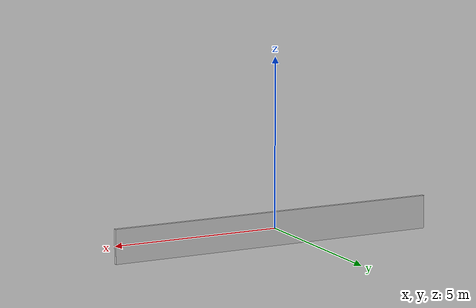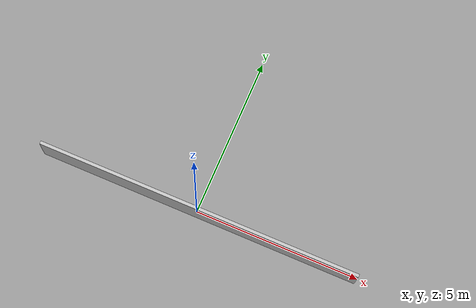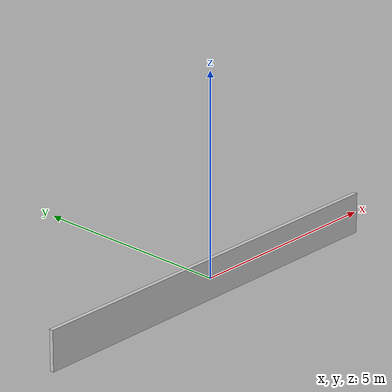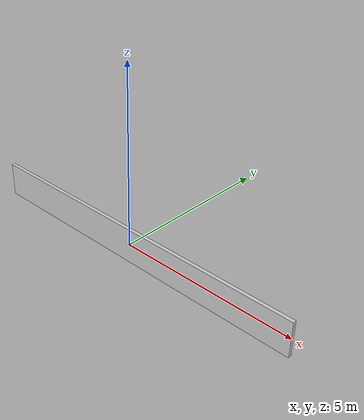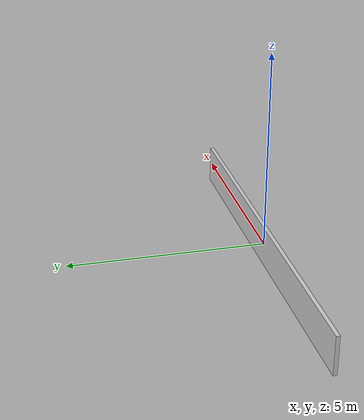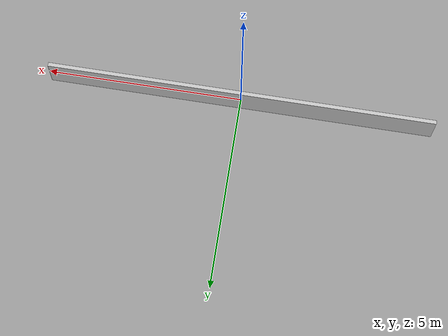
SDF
<?xml version="1.0" ?>
<sdf version="1.7">
  <model name="wall">
    <static>true</static>
    <link name="wall_body">
      <collision name="collision_wall">
        <geometry>
          <box>
            <size>10 0.1 1</size> <!-- Length, Thickness, Height -->
          </box>
        </geometry>
      </collision>
      <visual name="visual_wall">
        <geometry>
          <box>
            <size>10 0.1 1</size>
          </box>
        </geometry>
        <material>
          <ambient>0.8 0.8 0.8 1</ambient>
        </material>
      </visual>
    </link>
  </model>
</sdf>
